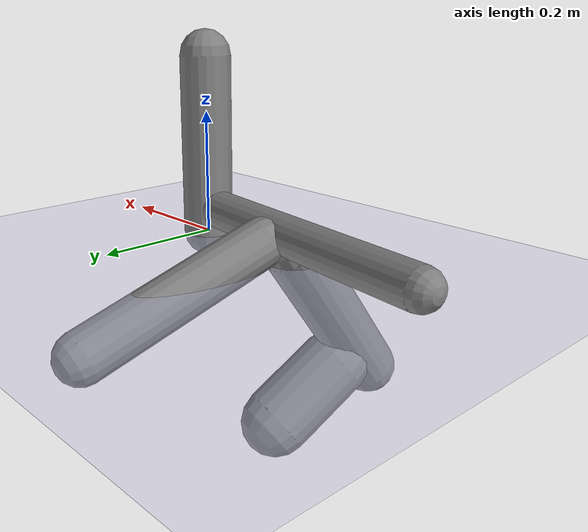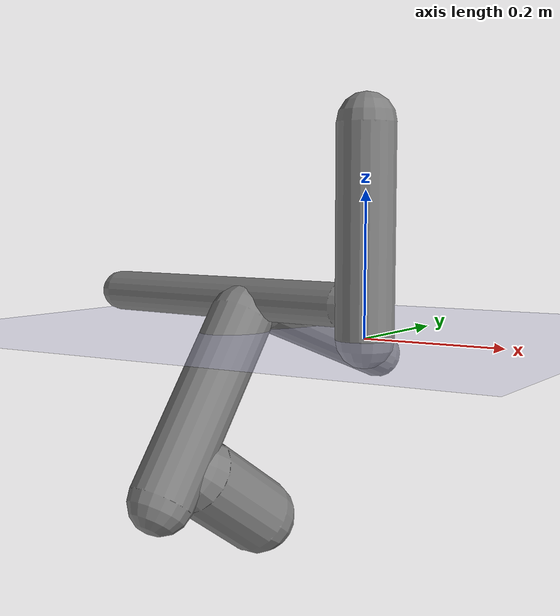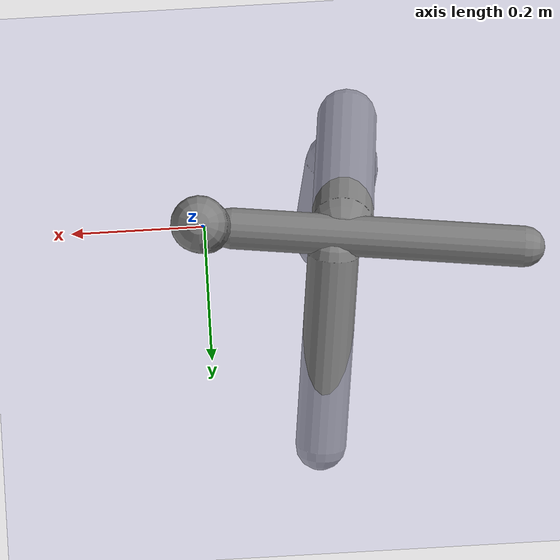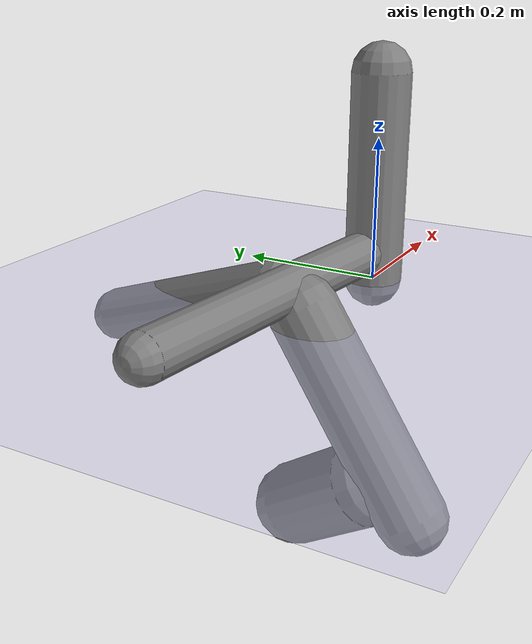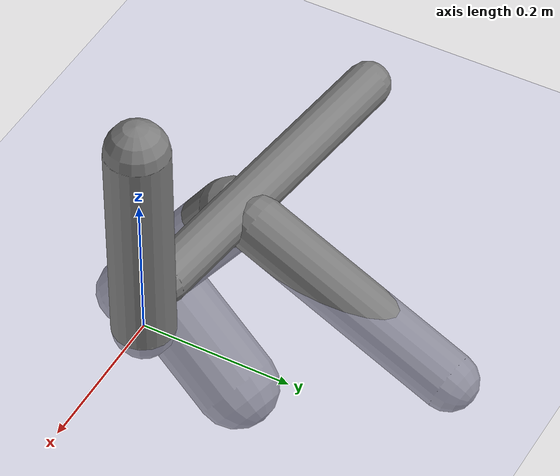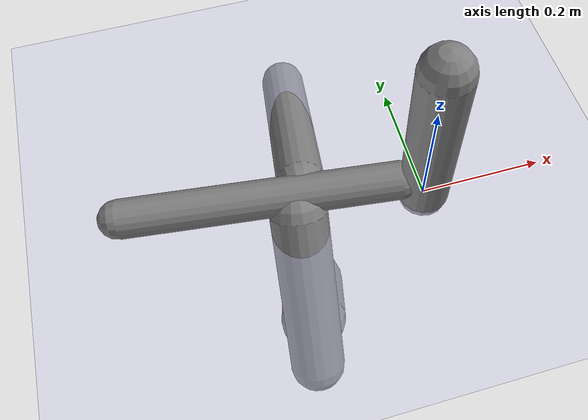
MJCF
<?xml version='1.0' encoding='UTF-8'?>
<mujoco model="robot_model">
  <worldbody>
    <light name="light" pos="0 -3 10" dir="0 0.5 -1" diffuse=".8 .8 .8" specular="0.1 0.1 0.1"/>
    <geom name="floor" type="plane" size="10.0 10.0 0.1" pos="0 0 0" rgba="0.8 0.8 1 1" contype="2" conaffinity="1"/>
    <body name="limb0" pos="0 0 0">
      <geom name="limb0_geom" type="capsule" fromto="0 0 0 0 0 0.28850599046805864" size="0.04072207349466383" density="597.337704318861" contype="1" conaffinity="2"/>
      <site type="sphere" size="0.01" name="limb0_site0" pos="-0.04043498293873619 0.004826947736294191 0.04388289559520845" quat="0.7071067811865476 -0.08381615138565905 -0.7021216794594055 0.0"/>
      <freejoint name="limb0_root"/>
      <body name="limb1" pos="-0.04043498293873619 0.004826947736294191 0.04388289559520845" quat="0.7071067811865476 -0.08381615138565905 -0.7021216794594055 0.0">
        <geom name="limb1_geom" type="capsule" fromto="0 0 0 0 0 0.436159457025696" size="0.03098543487441877" density="1089.9281873040459" contype="1" conaffinity="2"/>
        <site type="sphere" size="0.01" name="limb1_site0" pos="-0.006851300569091887 0.030218485317249244 0.15395539056427102" quat="0.7071067811865476 -0.6896045181103457 -0.15635091493751388 0.0"/>
        <site type="sphere" size="0.01" name="limb1_site1" pos="-0.02732109552799924 -0.014616939266029211 0.16485928389673543" quat="0.7071067811865476 0.3335675912599258 -0.6234842917516454 0.0"/>
        <body name="limb2" pos="-0.006851300569091887 0.030218485317249244 0.15395539056427102" quat="0.7071067811865476 -0.6896045181103457 -0.15635091493751388 0.0">
          <geom name="limb2_geom" type="capsule" fromto="0 0 0 0 0 0.30677663016450707" size="0.03844672947297005" density="448.7283854265311" contype="1" conaffinity="2"/>
          <joint name="joint_limb1_limb2_0" type="hinge" axis="1 0 0" range="-48.18281063347258 48.18281063347258" damping="5.0"/>
        </body>
        <body name="limb3" pos="-0.02732109552799924 -0.014616939266029211 0.16485928389673543" quat="0.7071067811865476 0.3335675912599258 -0.6234842917516454 0.0">
          <geom name="limb3_geom" type="capsule" fromto="0 0 0 0 0 0.2945753084567598" size="0.04671395078915875" density="778.1055387539296" contype="1" conaffinity="2"/>
          <site type="sphere" size="0.01" name="limb3_site0" pos="-0.025416733822742458 0.03919416844526498 0.23398434271952442" quat="0.7071067811865476 -0.5932802047872723 -0.3847318528632275 0.0"/>
          <body name="limb4" pos="-0.025416733822742458 0.03919416844526498 0.23398434271952442" quat="0.7071067811865476 -0.5932802047872723 -0.3847318528632275 0.0">
            <geom name="limb4_geom" type="capsule" fromto="0 0 0 0 0 0.13637614523352834" size="0.05686266723805684" density="690.3532618611748" contype="1" conaffinity="2"/>
            <joint name="joint_limb3_limb4_0" type="hinge" axis="0 1 0" range="-97.96950013480941 97.96950013480941" damping="5.0"/>
          </body>
          <joint name="joint_limb1_limb3_0" type="hinge" axis="0 1 0" range="-119.32645892784801 119.32645892784801" damping="5.0"/>
        </body>
        <joint name="joint_limb0_limb1_0" type="hinge" axis="0 1 0" range="-79.43746025127588 79.43746025127588" damping="5.0"/>
      </body>
    </body>
  </worldbody>
  <actuator>
    <position name="position_actuator_joint_limb0_limb1_0" joint="joint_limb0_limb1_0" gear="1.5835672608966855" inheritrange="1" forcerange="-7.8484176870145115 7.8484176870145115" forcelimited="true" kp="100.0"/>
    <position name="position_actuator_joint_limb1_limb2_0" joint="joint_limb1_limb2_0" gear="1.8903065910928873" inheritrange="1" forcerange="-3.7303749099213395 3.7303749099213395" forcelimited="true" kp="100.0"/>
    <position name="position_actuator_joint_limb1_limb3_0" joint="joint_limb1_limb3_0" gear="1.1378149002412088" inheritrange="1" forcerange="-9.518097602304797 9.518097602304797" forcelimited="true" kp="100.0"/>
    <position name="position_actuator_joint_limb3_limb4_0" joint="joint_limb3_limb4_0" gear="0.9364266391070425" inheritrange="1" forcerange="-7.440066834144852 7.440066834144852" forcelimited="true" kp="100.0"/>
  </actuator>
  <contact>
    <pair geom1="limb0_geom" geom2="limb1_geom"/>
    <pair geom1="limb1_geom" geom2="limb2_geom"/>
    <pair geom1="limb1_geom" geom2="limb3_geom"/>
    <pair geom1="limb3_geom" geom2="limb4_geom"/>
  </contact>
</mujoco>
